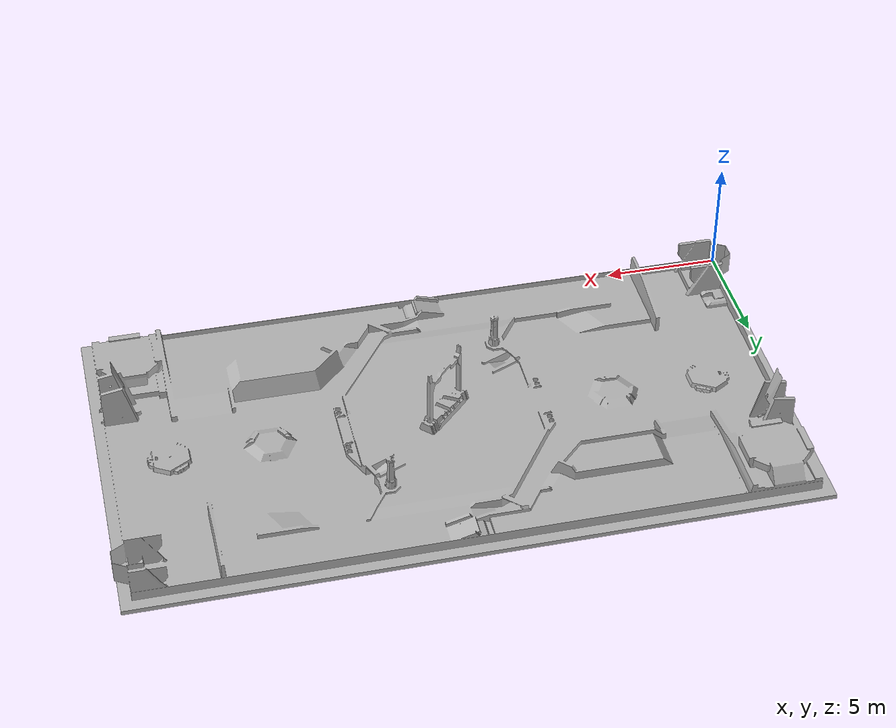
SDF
<?xml version='1.0'?>
<sdf version='1.6'>
  <model name='rmuc_2025'>
    <static>true</static>
    <link name='body'>
      <pose frame=''>14.5 8 0.2 0 0 0</pose>
      <self_collide>0</self_collide>
      <kinematic>0</kinematic>
      <gravity>1</gravity>
      <visual name='visual'>
        <geometry>
          <mesh>
            <!-- The display mesh omits four malformed 18.55 m perimeter walls. -->
            <uri>model://rmuc_2025/meshes/rmuc_2025_visual.stl</uri>
            <scale>1 1 1</scale>
          </mesh>
        </geometry>
        <material>
          <ambient>0.3 0.3 0.3 1</ambient>
          <diffuse>0.7 0.7 0.7 1</diffuse>
          <specular>0.01 0.01 0.01 1</specular>
        </material>
      </visual>
      <collision name='collision'>
        <geometry>
          <mesh>
            <uri>model://rmuc_2025/meshes/rmuc_2025.stl</uri>
            <scale>1 1 1</scale>
          </mesh>
        </geometry>
      </collision>
    </link>
  </model>
</sdf>
